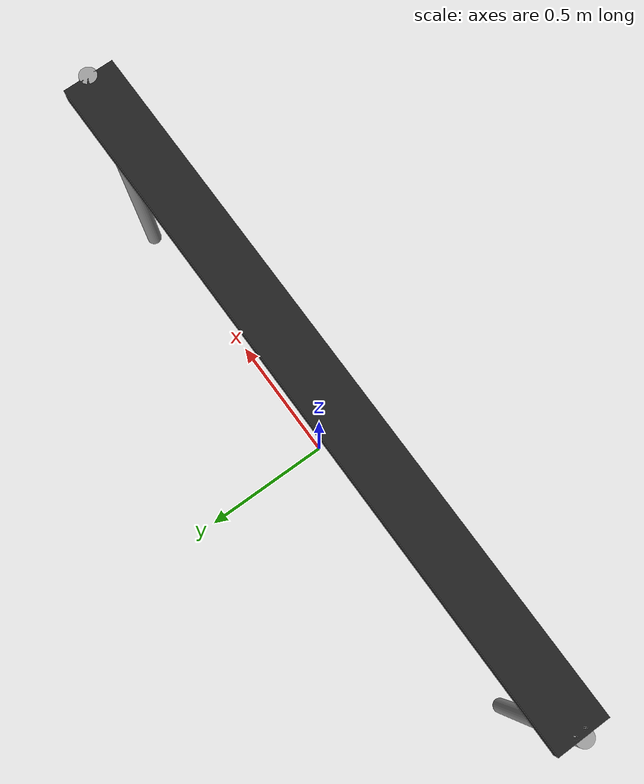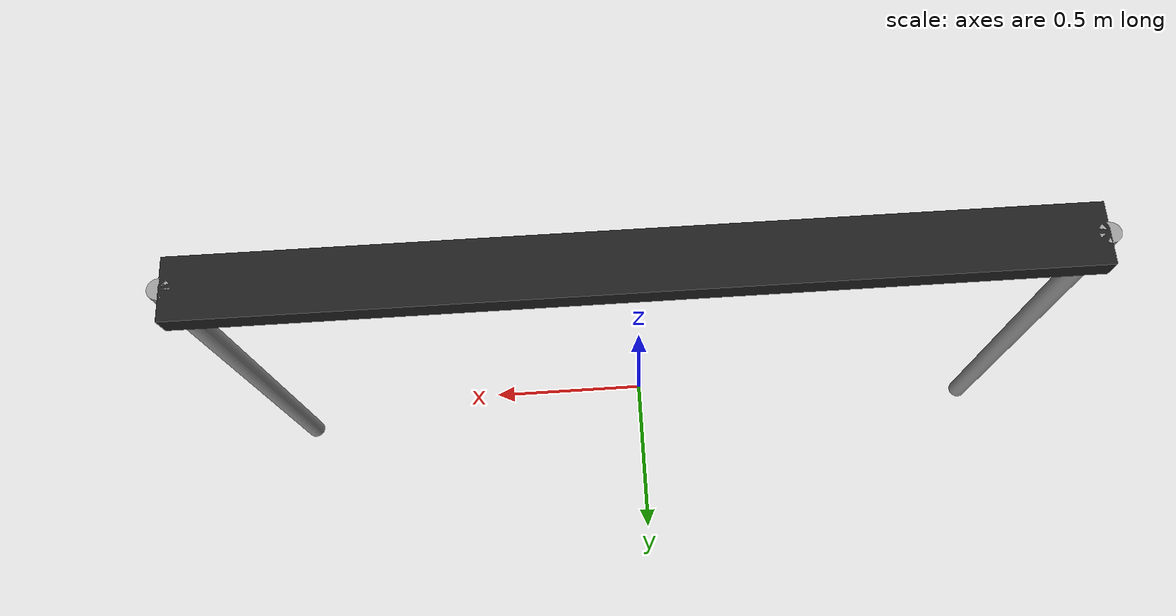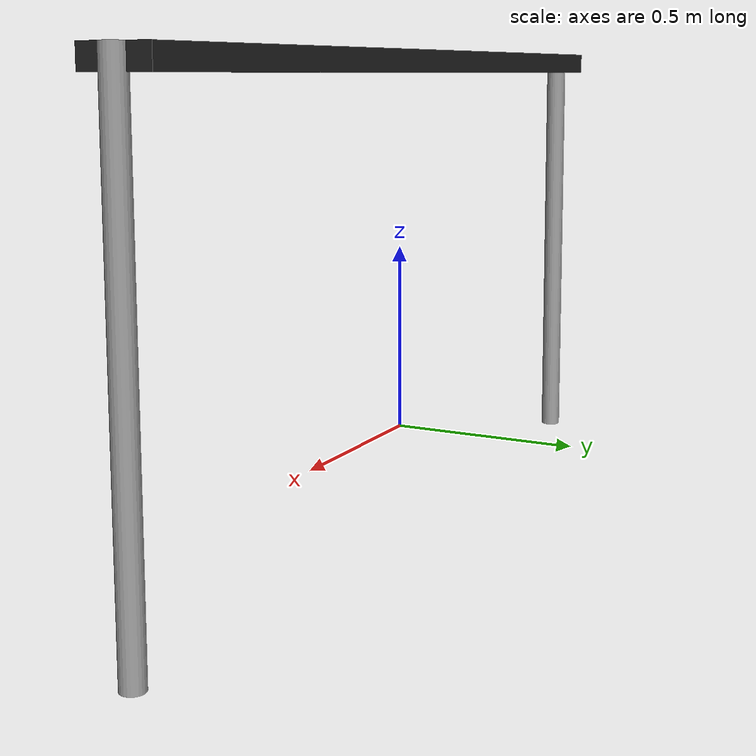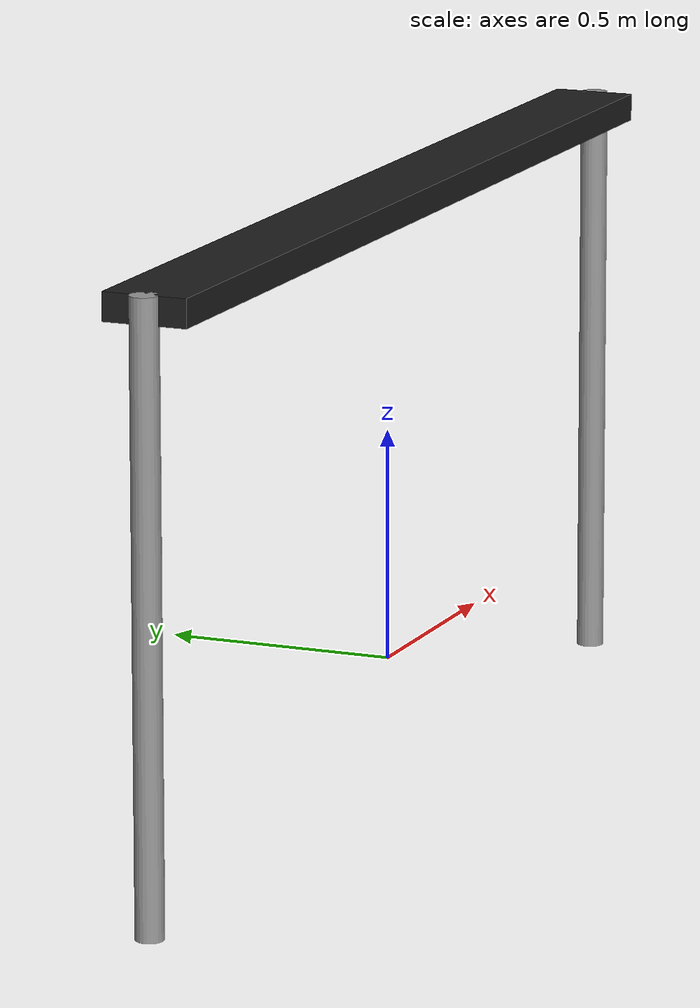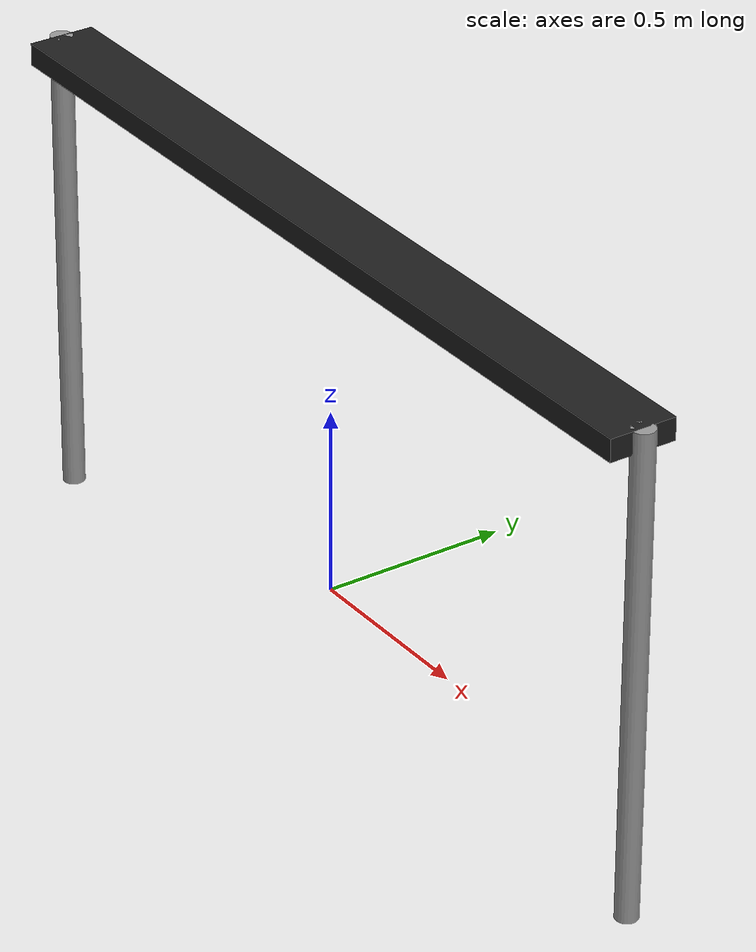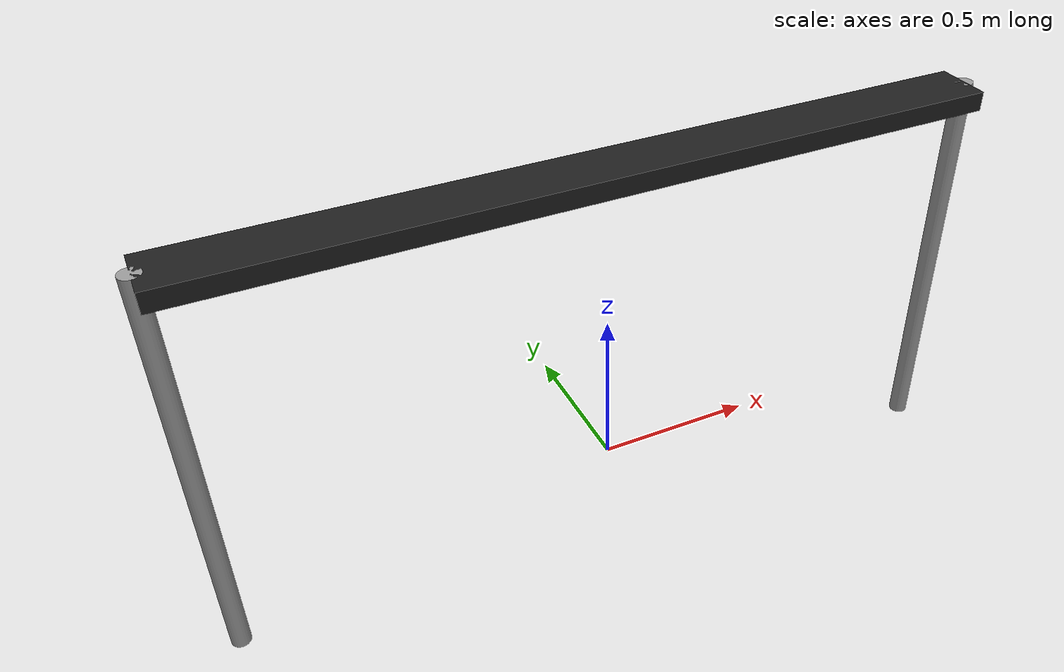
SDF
<?xml version="1.0" ?>
<sdf version="1.5">
  <model name="aTrack">
    <static>true</static>
    <link name="link">
      <collision name="surface">
        <pose>0 0 1.0 0 0 0</pose>
        <geometry>
          <box>
            <size>2.45 0.18 0.06</size>
          </box>
        </geometry>
        <surface>
          <friction>
            <ode>
              <mu>0.6</mu>
              <mu2>0.6</mu2>
            </ode>
          </friction>
        </surface>
      </collision>
      <visual name="visual1">
        <pose>0 0 1.0 0 0 0</pose>
        <geometry>
          <box>
            <size>2.45 0.18 0.06</size>
          </box>
        </geometry>
        <material>
          <script>
            <uri>file://media/materials/scripts/gazebo.material</uri>
            <name>Gazebo/Black</name>
          </script>
        </material>
      </visual>
      <collision name="right_leg">
        <pose>-1.225 0 0.38 0 0 0</pose>
        <geometry>
          <cylinder>
            <radius>0.03</radius>
            <length>1.3</length>
          </cylinder>
        </geometry>
      </collision>
      <visual name="right_leg">
        <pose>-1.225 0 0.38 0 0 0</pose>
        <geometry>
          <cylinder>
            <radius>0.03</radius>
            <length>1.3</length>
          </cylinder>
        </geometry>
	<material>
          <script>
            <uri>file://media/materials/scripts/gazebo.material</uri>
            <name>Gazebo/Grey</name>
          </script>
        </material>
      </visual>
      <collision name="left_leg">
        <pose>1.225 0 0.38 0 0 0</pose>
        <geometry>
          <cylinder>
            <radius>0.03</radius>
            <length>1.3</length>
          </cylinder>
        </geometry>
      </collision>
      <visual name="left_leg">
        <pose>1.225 0 0.38 0 0 0</pose>
        <geometry>
          <cylinder>
            <radius>0.03</radius>
            <length>1.3</length>
          </cylinder>
        </geometry>
 	<material>
          <script>
            <uri>file://media/materials/scripts/gazebo.material</uri>
            <name>Gazebo/Grey</name>
          </script>
        </material>
      </visual>
    </link>
  </model>
</sdf>
